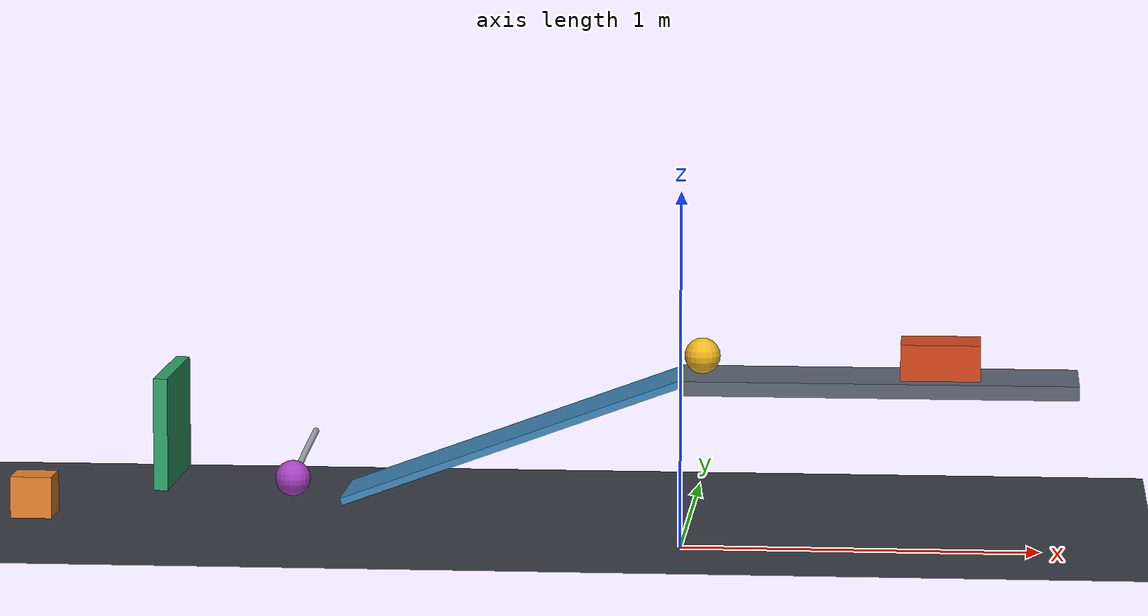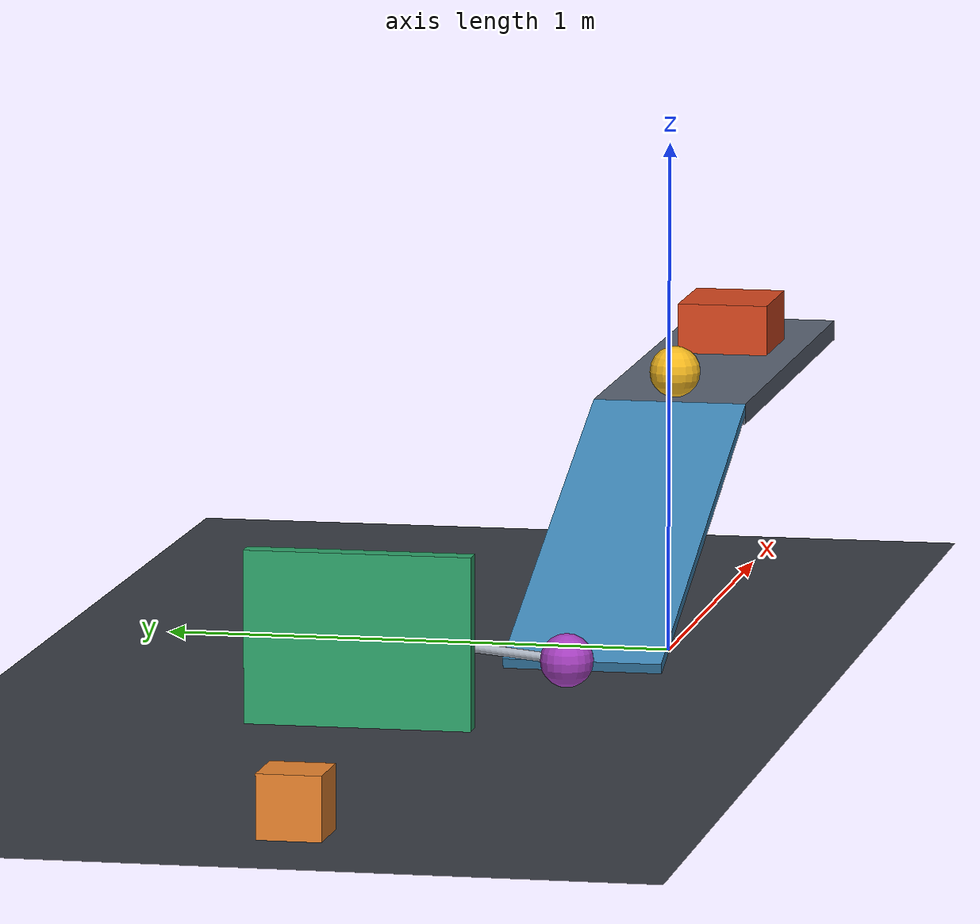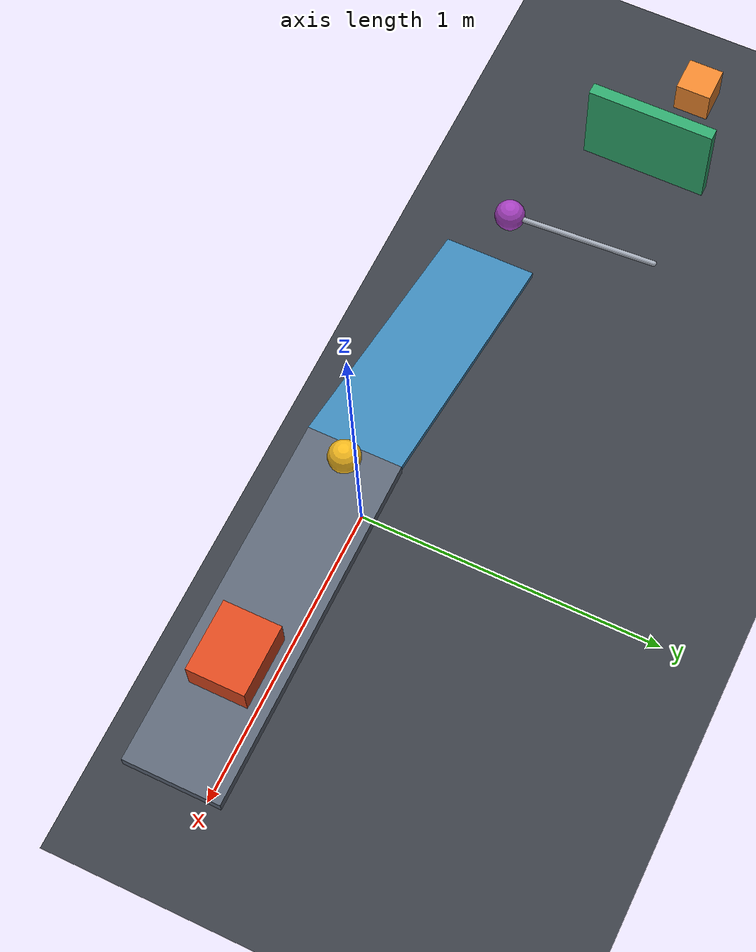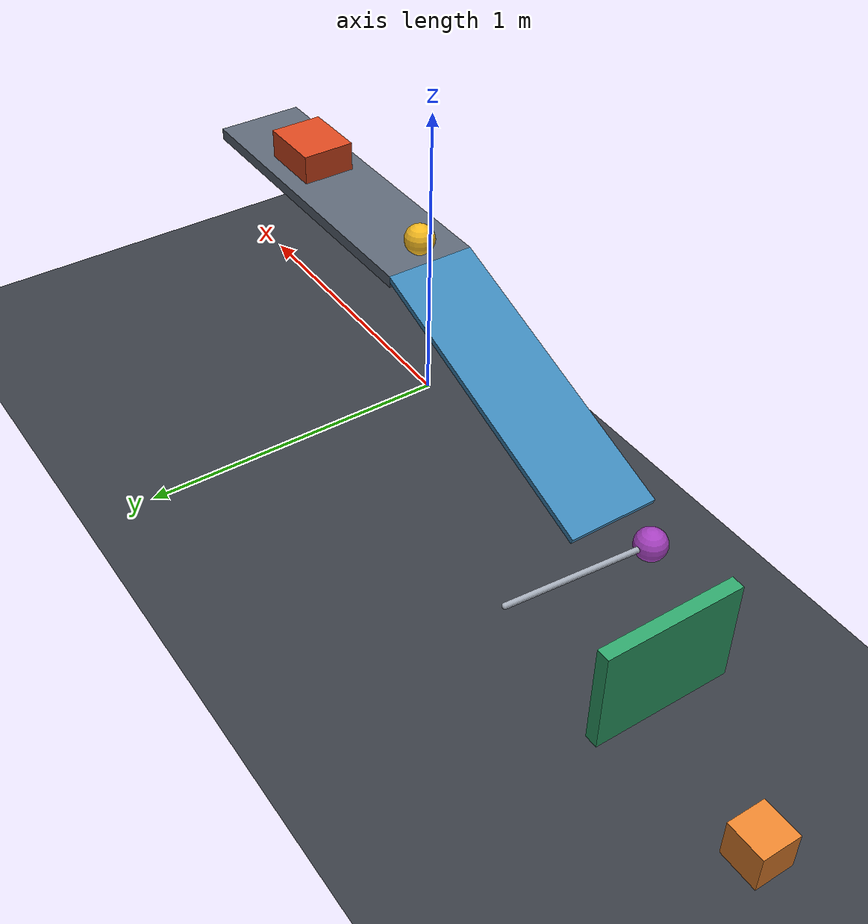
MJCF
<mujoco model="passive_cart_ball_pendulum_door">
  <compiler angle="degree" inertiafromgeom="true"/>
  <option timestep="0.002" gravity="0 0 -9.81" integrator="implicitfast" solver="Newton" cone="elliptic" iterations="100" tolerance="1e-10"/>
  <size njmax="2000" nconmax="400"/>

  <visual>
    <headlight ambient="0.35 0.35 0.35" diffuse="0.65 0.65 0.65" specular="0.2 0.2 0.2"/>
    <map znear="0.01" zfar="30"/>
  </visual>

  <worldbody>
    <light name="scene_light" pos="-0.5 -2 4" dir="0.1 0.4 -1"/>
    <camera name="overview" pos="-0.6 -4.5 2.8" xyaxes="1 0 0 0 0.5 0.8660254"/>

    <geom name="floor" type="plane" size="5 5 0.1" pos="0 0 0" friction="0.68 0.005 0.002" condim="6" solref="0.008 0.69010673" solimp="0.95 0.99 0.001 0.5 2" rgba="0.22 0.24 0.27 1"/>

    <body name="cart1" pos="0.72 0 0.5420201433">
      <joint name="cart1_slide" type="slide" axis="-1 0 0" damping="0.20" limited="true" range="0 0.64" solreflimit="0.004 1" solimplimit="0.999 0.9999 0.0001 0.5 2"/>
      <geom name="cart1_chassis" type="box" size="0.11 0.09 0.05" mass="0.50" friction="0.68 0.005 0.002" condim="6" solref="0.008 0.69010673" solimp="0.95 0.99 0.001 0.5 2" rgba="0.85 0.28 0.12 1"/>
    </body>

    <body name="ball1" pos="0.06 0 0.5420201433">
      <freejoint name="ball1_free"/>
      <geom name="ball1_sphere" type="sphere" size="0.05" mass="0.20" contype="1" conaffinity="5" friction="0.68 0.005 0.002" condim="6" solref="0.008 0.69010673" solimp="0.95 0.99 0.001 0.5 2" rgba="0.95 0.72 0.12 1"/>
    </body>

    <body name="launch_deck" pos="0.55 0 0.4720201433">
      <geom name="launch_deck_surface" type="box" size="0.55 0.15 0.02" contype="4" conaffinity="0" friction="0.68 0.005 0.002" condim="6" solref="0.008 0.69010673" solimp="0.95 0.99 0.001 0.5 2" rgba="0.36 0.40 0.46 1"/>
    </body>

    <!--
      Ramp top: length 1.00 m, width 0.30 m, inclination 20 degrees.
      High endpoint: (0, 0, 0.4920201433).
      Low endpoint: (-0.9396926208, 0, 0.15).
    -->
    <body name="ramp1" pos="-0.4698463104 0 0.3210100717" euler="0 -20 0">
      <geom name="ramp1_surface" type="box" pos="0 0 -0.01" size="0.50 0.15 0.01" friction="0.68 0.005 0.002" condim="6" solref="0.008 0.69010673" solimp="0.95 0.99 0.001 0.5 2" rgba="0.24 0.53 0.72 1"/>
    </body>

    <body name="pendulum1" pos="-1.0896926208 0.4974937186 0.23">
      <joint name="pendulum1_hinge" type="hinge" axis="0 0.1 -0.9949874371" damping="0.04" limited="true" range="-5 100" solreflimit="0.004 1" solimplimit="0.999 0.9999 0.0001 0.5 2"/>
      <geom name="pendulum1_rod" type="capsule" fromto="0 0 0 0 -0.4974937186 -0.05" size="0.009" mass="0.025" friction="0.68 0.005 0.002" condim="6" solref="0.008 0.69010673" solimp="0.95 0.99 0.001 0.5 2" rgba="0.65 0.68 0.73 1"/>
      <geom name="pendulum1_bob" type="sphere" pos="0 -0.4974937186 -0.05" size="0.05" mass="0.325" friction="0.68 0.005 0.002" condim="6" solref="0.008 0.69010673" solimp="0.95 0.99 0.001 0.5 2" rgba="0.65 0.25 0.75 1"/>
    </body>

    <body name="door1" pos="-1.4810864256 0.52 0.12">
      <joint name="door1_hinge" type="hinge" axis="0 -0.3420201433 -0.9396926208" damping="0.04" limited="true" range="0 70" solreflimit="0.004 1" solimplimit="0.999 0.9999 0.0001 0.5 2"/>
      <geom name="door1_panel" type="box" pos="0 -0.21 0.16" size="0.02 0.21 0.16" mass="0.45" friction="0.68 0.005 0.002" condim="6" solref="0.008 0.69010673" solimp="0.95 0.99 0.001 0.5 2" rgba="0.18 0.65 0.42 1"/>
    </body>

    <!-- The swinging panel meets this cube shortly before its hard stop. -->
    <body name="block1" pos="-1.89 0.34 0.06">
      <freejoint name="block1_free"/>
      <geom name="block1_cube" type="box" size="0.06 0.06 0.06" mass="0.35" friction="0.68 0.005 0.002" condim="6" solref="0.008 0.69010673" solimp="0.95 0.99 0.001 0.5 2" rgba="0.92 0.52 0.18 1"/>
    </body>
  </worldbody>

  <tendon>
    <fixed name="cart1_axial_spring" stiffness="18" damping="0" springlength="0.20 2.00">
      <joint joint="cart1_slide" coef="1"/>
    </fixed>
  </tendon>

  <keyframe>
    <key name="start" time="0" qpos="0 0.06 0 0.5420201433 1 0 0 0 0 0 -1.89 0.34 0.06 1 0 0 0" qvel="0 0 0 0 0 0 0 0 0 0 0 0 0 0 0"/>
  </keyframe>
</mujoco>
